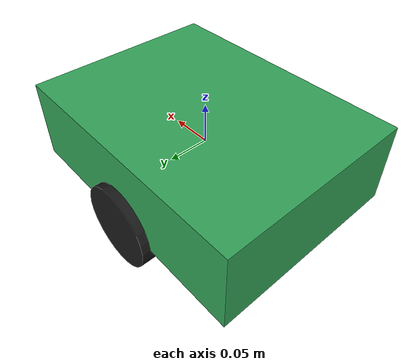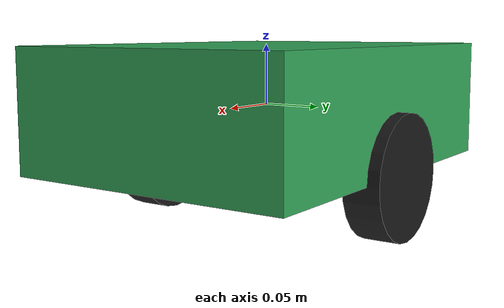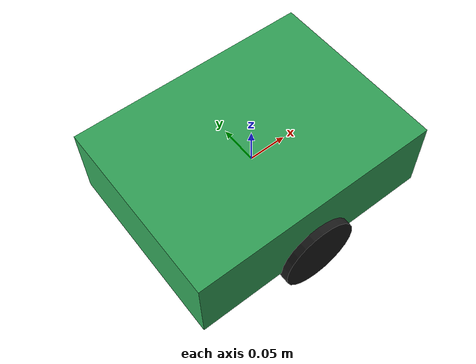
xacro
<?xml version="1.0"?>
<robot name="platform_robot" xmlns:xacro="http://www.ros.org/wiki/xacro">

  <xacro:property name="body_length" value="0.32"/>
  <xacro:property name="body_width"  value="0.24"/>
  <xacro:property name="body_height" value="0.10"/>

  <xacro:property name="wheel_radius" value="0.05"/>
  <xacro:property name="wheel_width"  value="0.03"/>
  <xacro:property name="wheel_y"      value="0.115"/>
  <xacro:property name="wheel_z"      value="-0.05"/>

  <xacro:macro name="box_inertia" params="m x y z">
    <inertial>
      <mass value="${m}"/>
      <origin xyz="0 0 0" rpy="0 0 0"/>
      <inertia
        ixx="${m*(y*y+z*z)/12.0}"
        ixy="0.0"
        ixz="0.0"
        iyy="${m*(x*x+z*z)/12.0}"
        iyz="0.0"
        izz="${m*(x*x+y*y)/12.0}"/>
    </inertial>
  </xacro:macro>

  <xacro:macro name="cylinder_inertia" params="m r l">
    <inertial>
      <mass value="${m}"/>
      <origin xyz="0 0 0" rpy="0 0 0"/>
      <inertia
        ixx="${m*(3*r*r + l*l)/12.0}"
        ixy="0.0"
        ixz="0.0"
        iyy="${m*(3*r*r + l*l)/12.0}"
        iyz="0.0"
        izz="${0.5*m*r*r}"/>
    </inertial>
  </xacro:macro>

  <link name="base_link">
    <visual>
      <geometry>
        <box size="${body_length} ${body_width} ${body_height}"/>
      </geometry>
      <material name="green">
        <color rgba="0.20 0.65 0.35 1.0"/>
      </material>
    </visual>

    <collision>
      <geometry>
        <box size="${body_length} ${body_width} ${body_height}"/>
      </geometry>
    </collision>

    <xacro:box_inertia m="8.0" x="${body_length}" y="${body_width}" z="${body_height}"/>
  </link>

  <link name="left_wheel">
    <visual>
      <origin rpy="1.5708 0 0"/>
      <geometry>
        <cylinder radius="${wheel_radius}" length="${wheel_width}"/>
      </geometry>
      <material name="black">
        <color rgba="0.1 0.1 0.1 1.0"/>
      </material>
    </visual>
    <collision>
      <origin rpy="1.5708 0 0"/>
      <geometry>
        <cylinder radius="${wheel_radius}" length="${wheel_width}"/>
      </geometry>
    </collision>
    <xacro:cylinder_inertia m="0.8" r="${wheel_radius}" l="${wheel_width}"/>
  </link>

  <joint name="left_wheel_joint" type="continuous">
    <parent link="base_link"/>
    <child link="left_wheel"/>
    <origin xyz="0 ${wheel_y} ${wheel_z}" rpy="0 0 0"/>
    <axis xyz="0 1 0"/>
  </joint>

  <link name="right_wheel">
    <visual>
      <origin rpy="1.5708 0 0"/>
      <geometry>
        <cylinder radius="${wheel_radius}" length="${wheel_width}"/>
      </geometry>
      <material name="black">
        <color rgba="0.1 0.1 0.1 1.0"/>
      </material>
    </visual>
    <collision>
      <origin rpy="1.5708 0 0"/>
      <geometry>
        <cylinder radius="${wheel_radius}" length="${wheel_width}"/>
      </geometry>
    </collision>
    <xacro:cylinder_inertia m="0.8" r="${wheel_radius}" l="${wheel_width}"/>
  </link>

  <joint name="right_wheel_joint" type="continuous">
    <parent link="base_link"/>
    <child link="right_wheel"/>
    <origin xyz="0 -${wheel_y} ${wheel_z}" rpy="0 0 0"/>
    <axis xyz="0 1 0"/>
  </joint>

  <link name="rear_caster">
    <visual>
      <geometry>
        <sphere radius="0.025"/>
      </geometry>
      <material name="gray">
        <color rgba="0.6 0.6 0.6 1.0"/>
      </material>
    </visual>
    <collision>
      <geometry>
        <sphere radius="0.025"/>
      </geometry>
    </collision>
    <inertial>
      <mass value="0.2"/>
      <origin xyz="0 0 0" rpy="0 0 0"/>
      <inertia ixx="0.0002" ixy="0" ixz="0" iyy="0.0002" iyz="0" izz="0.0002"/>
    </inertial>
  </link>

  <joint name="rear_caster_joint" type="fixed">
    <parent link="base_link"/>
    <child link="rear_caster"/>
    <origin xyz="-0.11 0 -0.075" rpy="0 0 0"/>
  </joint>

  <gazebo reference="left_wheel">
    <mu1>10.0</mu1>
    <mu2>10.0</mu2>
    <kp>1000000.0</kp>
    <kd>100.0</kd>
  </gazebo>

  <gazebo reference="right_wheel">
    <mu1>10.0</mu1>
    <mu2>10.0</mu2>
    <kp>1000000.0</kp>
    <kd>100.0</kd>
  </gazebo>

  <gazebo>
    <plugin name="gazebo_ros_diff_drive" filename="libgazebo_ros_diff_drive.so">
      <ros>
        <remapping>cmd_vel:=/cmd_vel</remapping>
        <remapping>odom:=/odom</remapping>
      </ros>

      <update_rate>50</update_rate>

      <left_joint>left_wheel_joint</left_joint>
      <right_joint>right_wheel_joint</right_joint>

      <wheel_separation>${2.0 * wheel_y}</wheel_separation>
      <wheel_diameter>${2.0 * wheel_radius}</wheel_diameter>

      <max_wheel_torque>20.0</max_wheel_torque>
      <max_wheel_acceleration>1.0</max_wheel_acceleration>

      <command_topic>cmd_vel</command_topic>

      <publish_odom>true</publish_odom>
      <publish_odom_tf>true</publish_odom_tf>
      <publish_wheel_tf>false</publish_wheel_tf>

      <odometry_topic>odom</odometry_topic>
      <odometry_frame>odom</odometry_frame>
      <robot_base_frame>base_link</robot_base_frame>
    </plugin>
  </gazebo>

</robot>
